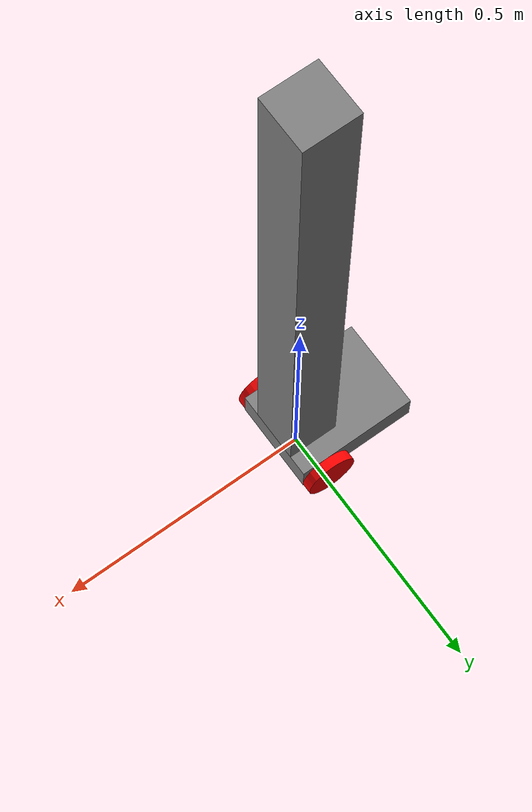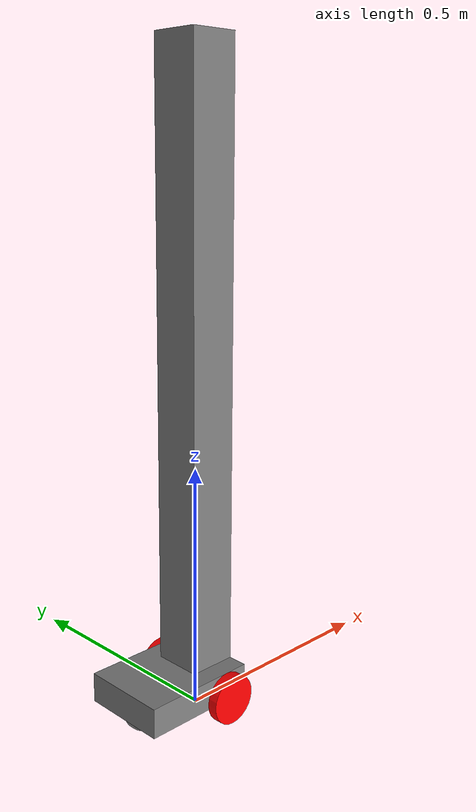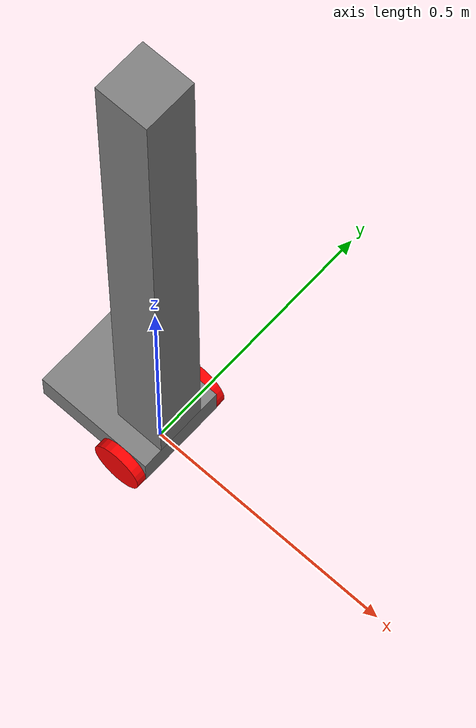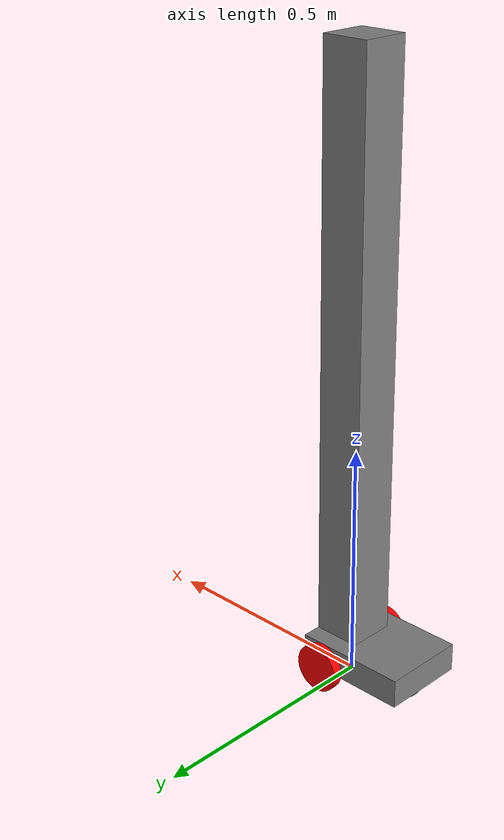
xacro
<?xml version="1.0"?>
<robot name="dtw_robot" xmlns:xacro="http://ros.org/wiki/xacro">
  <material name="gray">
    <color rgba="0.5 0.5 0.5 1"/>
  </material>
  <material name="red">
    <color rgba="1.0 0.0 0.0 1"/>
  </material>

  <xacro:macro name="wheel_macro" params="parent prefix xyz">
    <joint name="${prefix}_joint" type="continuous">
      <origin xyz="${xyz}" rpy="${radians(-90)} 0 0"/>
      <parent link="${parent}"/>
      <child  link="${prefix}_link"/>
      <axis xyz="0 0 1" />
    </joint>
    <transmission name="${prefix}_trans" type="SimpleTransmission">
      <type>transmission_interface/SimpleTransmission</type>
      <actuator name="${prefix}_motor">
        <mechanicalReduction>1</mechanicalReduction>
      </actuator>
      <joint name="${prefix}_joint">
        <hardwareInterface>hardware_interface/VelocityJointInterface</hardwareInterface>
      </joint>
    </transmission>
    <link name="${prefix}_link">
      <inertial>
        <origin xyz="0 0 0" rpy="0 0 0"/>
        <mass value="0.1"/>
        <inertia ixx="0.0001" ixy="0.0" ixz="0.0" iyy="0.0001" iyz="0.0" izz="0.0001"/>
      </inertial>
      <visual>
        <geometry>
          <cylinder radius="0.05" length="0.02" />
        </geometry>
        <material name="red"/>
      </visual>
      <collision>
        <geometry>
          <cylinder radius="0.05" length="0.02" />
        </geometry>
      </collision>
    </link>
    <gazebo reference="${prefix}_link">
      <material>Gazebo/Red</material>
      <mu1 value="2.5" />
      <mu2 value="2.5" />
      <kp value="50000" />
      <kd value="10" />
    </gazebo>
  </xacro:macro>

  <link name="base_link"/>

  <joint name="body_joint" type="fixed">
    <parent link="base_link"/>
    <child  link="body_link"/>
    <origin xyz="-0.07 0 0.07" rpy="0 0 0"/>
  </joint>
  <link name="body_link">
    <inertial>
      <origin xyz="0 0 0" rpy="0 0 0"/>
      <mass value="1.0"/>
      <inertia ixx="0.001" ixy="0.0" ixz="0.0" iyy="0.001" iyz="0.0" izz="0.001"/>
    </inertial>
    <visual>
      <origin xyz="0 0 0" rpy="0 0 0" />
      <geometry>
        <box size="0.24 0.18 0.06" />
      </geometry>
      <material name="gray" />
    </visual>
    <collision>
      <origin xyz="0 0 0" rpy="0 0 0" />
      <geometry>
        <box size="0.24 0.178 0.06" />
      </geometry>
    </collision>
  </link>
  <gazebo reference="body_link">
    <material>Gazebo/Gray</material>
  </gazebo>

  <xacro:wheel_macro prefix="left_wheel"  parent="base_link" xyz="0 0.1 0.05"/>
  <xacro:wheel_macro prefix="right_wheel" parent="base_link" xyz="0 -0.1 0.05"/>

  <joint name="ball_joint" type="fixed">
    <parent link="base_link"/>
    <child  link="ball_link"/>
    <origin xyz="-0.14 0 0.04" rpy="0 0 0"/>
  </joint>
  <link name="ball_link">
    <visual>
      <origin xyz="0 0 0" rpy="0 0 0" />
      <geometry>
        <sphere radius="0.04" />
      </geometry>
      <material name="gray" />
    </visual>
    <collision>
      <origin xyz="0 0 0" rpy="0 0 0" />
      <geometry>
        <sphere radius="0.04" />
      </geometry>
      <material name="gray" />
    </collision>
  </link>

  <xacro:property name="height" value="1.2" />
  <joint name="center_pillar" type="fixed">
    <parent link="base_link"/>
    <child  link="center_pillar_link"/>
    <origin xyz="0 0 ${height/2+0.1}" rpy="0 0 0"/>
  </joint>
  <link name="center_pillar_link">
    <visual>
      <origin xyz="0 0 0" rpy="0 0 0" />
      <geometry>
        <box size="0.1 0.1 ${height}" />
      </geometry>
      <material name="gray" />
    </visual>
    <collision>
      <origin xyz="0 0 0" rpy="0 0 0" />
      <geometry>
        <box size="0.1 0.1 ${height}" />
      </geometry>
      <material name="gray" />
    </collision>
  </link>

  <gazebo reference="ball_link">
    <material>Gazebo/Gray</material>
    <mu1 value="0.5" />
    <mu2 value="0.5" />
  </gazebo>

  <gazebo>
    <plugin name="gazebo_ros_control" filename="libgazebo_ros_control.so">
      <robotNamespace>/dtw_robot</robotNamespace>
      <robotSimType>gazebo_ros_control/DefaultRobotHWSim</robotSimType>
      <legacyModeNS>true</legacyModeNS>
    </plugin>
  </gazebo>

  <gazebo>
    <plugin name="ground_truth" filename="libgazebo_ros_p3d.so">
      <frameName>world</frameName>
      <bodyName>base_link</bodyName>
      <topicName>/tracker</topicName>
      <updateRate>10.0</updateRate>
    </plugin>
  </gazebo>
</robot>
